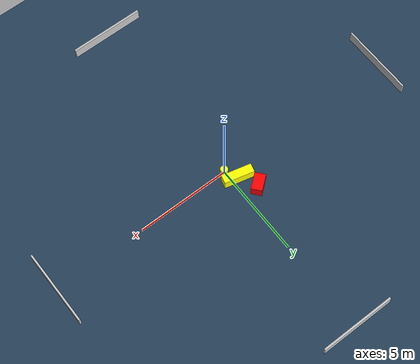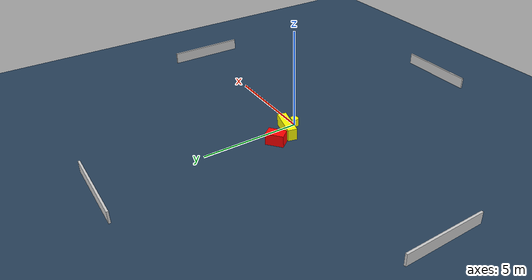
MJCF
<?xml version="1.0" ?>
<mujoco model="generated_environment">
  <option timestep="0.01" integrator="RK4" cone="elliptic"/>
  <default>
    <geom density="1"/>
  </default>
  <asset>
    <texture builtin="gradient" height="3072" name="skybox" rgb1="0.3 0.5 0.7" rgb2="0 0 0" type="skybox" width="512"/>
    <texture builtin="checker" height="300" name="groundplane" rgb1="0.2 0.3 0.4" rgb2="0.1 0.2 0.3" type="2d" width="300"/>
    <material name="groundplane" reflectance="0.2" texrepeat="5 5" texture="groundplane"/>
  </asset>
  <worldbody>
    <light dir="0 0 -1" directional="true" pos="0 0 1.5"/>
    <geom condim="3" friction="0.5 0.005 0.001" material="groundplane" name="floor" pos="0 0 0" size="0 0 0.05" type="plane"/>
    <body name="walls">
      <geom name="wall_1" condim="4" pos="-10.0 0.0 0.3" rgba="0.800000011920929 0.800000011920929 0.800000011920929 1.0" size="0.05 2.0 0.3" type="box"/>
      <geom name="wall_2" condim="4" pos="10.0 0.0 0.3" rgba="0.800000011920929 0.800000011920929 0.800000011920929 1.0" size="0.05 2.0 0.3" type="box"/>
      <geom name="wall_3" condim="4" pos="0.0 -10.0 0.3" rgba="0.800000011920929 0.800000011920929 0.800000011920929 1.0" size="2.0 0.05 0.3" type="box"/>
      <geom name="wall_4" condim="4" pos="0.0 10.0 0.3" rgba="0.800000011920929 0.800000011920929 0.800000011920929 1.0" size="2.0 0.05 0.3" type="box"/>
    </body>
    <body name="robot">
      <joint name="joint_x" type="slide" pos="0 0 0" axis="1 0 0"/>
      <joint name="joint_y" type="slide" pos="0 0 0" axis="0 1 0"/>
      <geom name="robot" type="cylinder" pos="0.0 0.0 0.2" size="0.2 0.2 0.0" mass="5.0" friction="1.0 0.005 0.0001" condim="4" rgba="1.0 1.0 0.0 1.0"/>
    </body>
    <body name="obstacle_1_movable">
      <geom name="obstacle_1_movable" condim="4" pos="-0.3312625163105814 0.6687876535784627 0.3" euler="0 0 256.2950959556342" friction="0.0 0.005 0.001" rgba="1.0 1.0 0.0 1.0" size="0.23151585943954317 0.7997606648044815 0.3" type="box" mass="0.1"/>
      <joint type="free"/>
    </body>
    <body name="obstacle_2_static">
      <geom name="obstacle_2_static" condim="4" pos="-0.8532611664616153 1.627754562079803 0.3" euler="0 0 218.98216641227287" friction="0.0 0.005 0.001" rgba="1.0 0.0 0.0 1.0" size="0.45647709909943973 0.2887934060178242 0.3" type="box"/>
    </body>
  </worldbody>
  <actuator>
    <motor name="actuator_x" joint="joint_x" gear="1" ctrlrange="-1 1"/>
    <motor name="actuator_y" joint="joint_y" gear="1" ctrlrange="-1 1"/>
  </actuator>
</mujoco>
